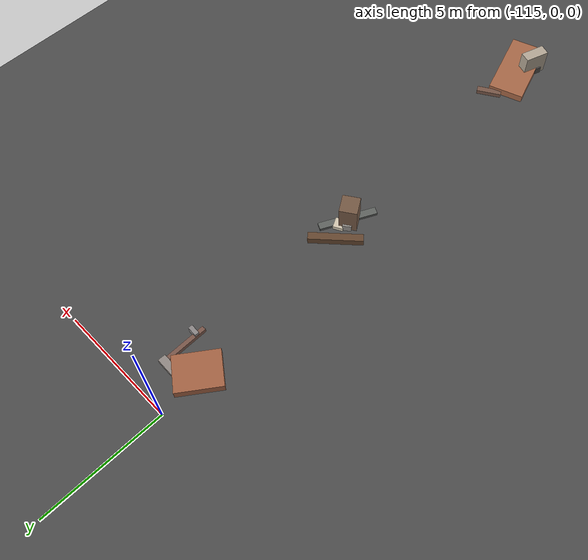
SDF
<sdf version="1.6">
 <world name="navitas_arena">
  <model name="ground_plane">
   <static>true</static>
   <link name="link">
    <collision name="collision">
     <geometry><plane><normal>0 0 1</normal><size>400 400</size></plane></geometry>
     <surface><friction><ode><mu>0.800</mu><mu2>0.800</mu2></ode></friction></surface>
    </collision>
    <visual name="visual">
     <cast_shadows>false</cast_shadows>
     <geometry><plane><normal>0 0 1</normal><size>400 400</size></plane></geometry>
     <material>
      <specular>0.04 0.04 0.04 1</specular>
      <script>
       <uri>file://media/materials/scripts/navitas_asphalt.material</uri>
       <name>Navitas/RealArenaAsphalt</name>
      </script>
     </material>
    </visual>
   </link>
  </model>
  <model name="deb_kolay_3">
   <static>true</static>
   <pose>-113.806 -9.527 0.000 0 0 0</pose>
   <link name="link">
    <collision name="col_0">
     <pose>-0.065 -0.559 0.061 0.000 0.000 1.113</pose>
     <geometry><box><size>2.340 0.297 0.122</size></box></geometry>
    </collision>
    <visual name="vis_0">
     <pose>-0.065 -0.559 0.061 0.000 0.000 1.113</pose>
     <geometry><box><size>2.340 0.297 0.122</size></box></geometry>
     <material>
      <ambient>0.35 0.36 0.35 1</ambient>
      <diffuse>0.38 0.39 0.38 1</diffuse>
      <specular>0.05 0.05 0.045 1</specular>
     </material>
    </visual>
    <collision name="col_1">
     <pose>-0.159 -0.558 0.585 0.000 0.000 2.156</pose>
     <geometry><box><size>0.747 0.709 1.170</size></box></geometry>
    </collision>
    <visual name="vis_1">
     <pose>-0.159 -0.558 0.585 0.000 0.000 2.156</pose>
     <geometry><box><size>0.747 0.709 1.170</size></box></geometry>
     <material>
      <ambient>0.43 0.32 0.25 1</ambient>
      <diffuse>0.46 0.35 0.27 1</diffuse>
      <specular>0.05 0.05 0.045 1</specular>
     </material>
    </visual>
    <collision name="col_2">
     <pose>-0.257 -0.355 0.154 0.000 0.000 0.668</pose>
     <geometry><box><size>0.344 0.450 0.309</size></box></geometry>
    </collision>
    <visual name="vis_2">
     <pose>-0.257 -0.355 0.154 0.000 0.000 0.668</pose>
     <geometry><box><size>0.344 0.450 0.309</size></box></geometry>
     <material>
      <ambient>0.55 0.53 0.51 1</ambient>
      <diffuse>0.60 0.58 0.56 1</diffuse>
      <specular>0.05 0.05 0.045 1</specular>
     </material>
    </visual>
    <collision name="col_3">
     <pose>-0.412 0.440 0.151 0.000 0.000 0.742</pose>
     <geometry><box><size>2.136 0.305 0.302</size></box></geometry>
    </collision>
    <visual name="vis_3">
     <pose>-0.412 0.440 0.151 0.000 0.000 0.742</pose>
     <geometry><box><size>2.136 0.305 0.302</size></box></geometry>
     <material>
      <ambient>0.37 0.26 0.18 1</ambient>
      <diffuse>0.40 0.28 0.19 1</diffuse>
      <specular>0.05 0.05 0.045 1</specular>
     </material>
    </visual>
    <collision name="col_4">
     <pose>-0.026 -0.147 0.084 0.000 0.000 2.060</pose>
     <geometry><box><size>0.438 0.399 0.168</size></box></geometry>
    </collision>
    <visual name="vis_4">
     <pose>-0.026 -0.147 0.084 0.000 0.000 2.060</pose>
     <geometry><box><size>0.438 0.399 0.168</size></box></geometry>
     <material>
      <ambient>0.78 0.73 0.65 1</ambient>
      <diffuse>0.84 0.79 0.70 1</diffuse>
      <specular>0.05 0.05 0.045 1</specular>
     </material>
    </visual>
   </link>
  </model>
  <model name="deb_kolay_44">
   <static>true</static>
   <pose>-113.646 -20.196 0.000 0 0 0</pose>
   <link name="link">
    <collision name="col_0">
     <pose>-0.346 -1.003 0.519 0.000 0.000 1.255</pose>
     <geometry><box><size>1.019 0.438 1.037</size></box></geometry>
    </collision>
    <visual name="vis_0">
     <pose>-0.346 -1.003 0.519 0.000 0.000 1.255</pose>
     <geometry><box><size>1.019 0.438 1.037</size></box></geometry>
     <material>
      <ambient>0.66 0.61 0.55 1</ambient>
      <diffuse>0.71 0.66 0.59 1</diffuse>
      <specular>0.05 0.05 0.045 1</specular>
     </material>
    </visual>
    <collision name="col_1">
     <pose>0.077 1.291 0.091 0.000 0.000 0.548</pose>
     <geometry><box><size>1.007 0.248 0.181</size></box></geometry>
    </collision>
    <visual name="vis_1">
     <pose>0.077 1.291 0.091 0.000 0.000 0.548</pose>
     <geometry><box><size>1.007 0.248 0.181</size></box></geometry>
     <material>
      <ambient>0.43 0.32 0.26 1</ambient>
      <diffuse>0.47 0.34 0.28 1</diffuse>
      <specular>0.05 0.05 0.045 1</specular>
     </material>
    </visual>
    <collision name="col_2">
     <pose>-0.008 -0.473 0.155 0.000 0.000 1.907</pose>
     <geometry><box><size>2.978 1.451 0.309</size></box></geometry>
    </collision>
    <visual name="vis_2">
     <pose>-0.008 -0.473 0.155 0.000 0.000 1.907</pose>
     <geometry><box><size>2.978 1.451 0.309</size></box></geometry>
     <material>
      <ambient>0.61 0.38 0.26 1</ambient>
      <diffuse>0.66 0.41 0.28 1</diffuse>
      <specular>0.05 0.05 0.045 1</specular>
     </material>
    </visual>
    <collision name="col_3">
     <pose>-0.117 -0.544 0.151 0.000 0.000 1.221</pose>
     <geometry><box><size>1.632 0.651 0.301</size></box></geometry>
    </collision>
    <visual name="vis_3">
     <pose>-0.117 -0.544 0.151 0.000 0.000 1.221</pose>
     <geometry><box><size>1.632 0.651 0.301</size></box></geometry>
     <material>
      <ambient>0.31 0.30 0.28 1</ambient>
      <diffuse>0.33 0.32 0.31 1</diffuse>
      <specular>0.05 0.05 0.045 1</specular>
     </material>
    </visual>
   </link>
  </model>
  <model name="deb_kolay_123">
   <static>true</static>
   <pose>-113.787 -1.956 0.000 0 0 0</pose>
   <link name="link">
    <collision name="col_0">
     <pose>0.205 -0.230 0.098 0.000 0.000 1.575</pose>
     <geometry><box><size>1.820 0.171 0.196</size></box></geometry>
    </collision>
    <visual name="vis_0">
     <pose>0.205 -0.230 0.098 0.000 0.000 1.575</pose>
     <geometry><box><size>1.820 0.171 0.196</size></box></geometry>
     <material>
      <ambient>0.45 0.31 0.27 1</ambient>
      <diffuse>0.48 0.34 0.29 1</diffuse>
      <specular>0.05 0.05 0.045 1</specular>
     </material>
    </visual>
    <collision name="col_1">
     <pose>-0.295 0.688 0.106 0.000 0.000 3.116</pose>
     <geometry><box><size>1.324 0.311 0.212</size></box></geometry>
    </collision>
    <visual name="vis_1">
     <pose>-0.295 0.688 0.106 0.000 0.000 3.116</pose>
     <geometry><box><size>1.324 0.311 0.212</size></box></geometry>
     <material>
      <ambient>0.53 0.50 0.48 1</ambient>
      <diffuse>0.57 0.54 0.52 1</diffuse>
      <specular>0.05 0.05 0.045 1</specular>
     </material>
    </visual>
    <collision name="col_2">
     <pose>0.341 -0.783 0.158 0.000 0.000 3.088</pose>
     <geometry><box><size>0.396 0.176 0.316</size></box></geometry>
    </collision>
    <visual name="vis_2">
     <pose>0.341 -0.783 0.158 0.000 0.000 3.088</pose>
     <geometry><box><size>0.396 0.176 0.316</size></box></geometry>
     <material>
      <ambient>0.51 0.49 0.49 1</ambient>
      <diffuse>0.55 0.53 0.53 1</diffuse>
      <specular>0.05 0.05 0.045 1</specular>
     </material>
    </visual>
    <collision name="col_3">
     <pose>-0.961 0.120 0.184 0.000 0.000 2.517</pose>
     <geometry><box><size>1.425 1.774 0.368</size></box></geometry>
    </collision>
    <visual name="vis_3">
     <pose>-0.961 0.120 0.184 0.000 0.000 2.517</pose>
     <geometry><box><size>1.425 1.774 0.368</size></box></geometry>
     <material>
      <ambient>0.60 0.36 0.25 1</ambient>
      <diffuse>0.65 0.39 0.27 1</diffuse>
      <specular>0.05 0.05 0.045 1</specular>
     </material>
    </visual>
   </link>
  </model>
 </world>
</sdf>
